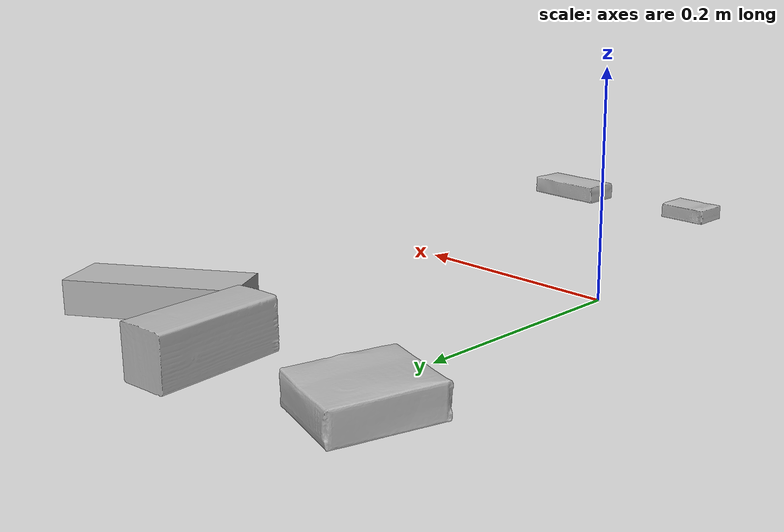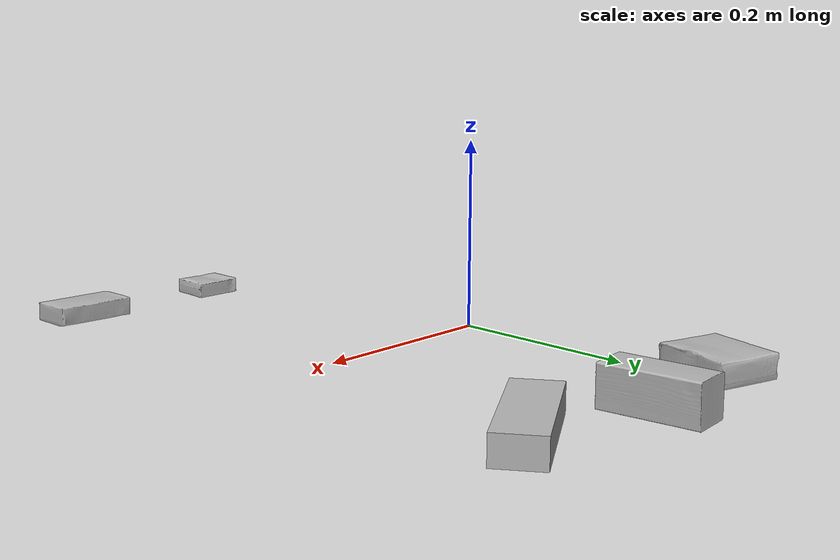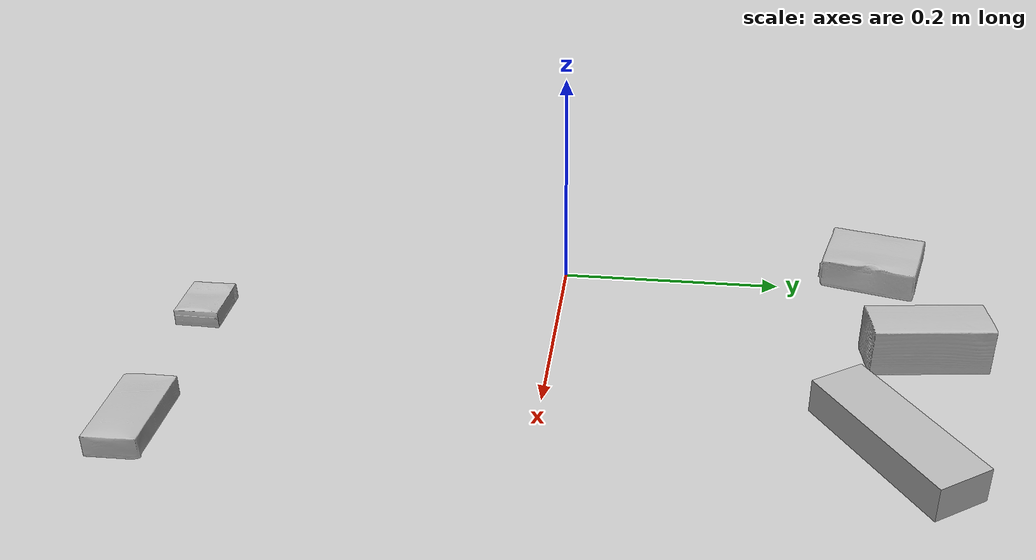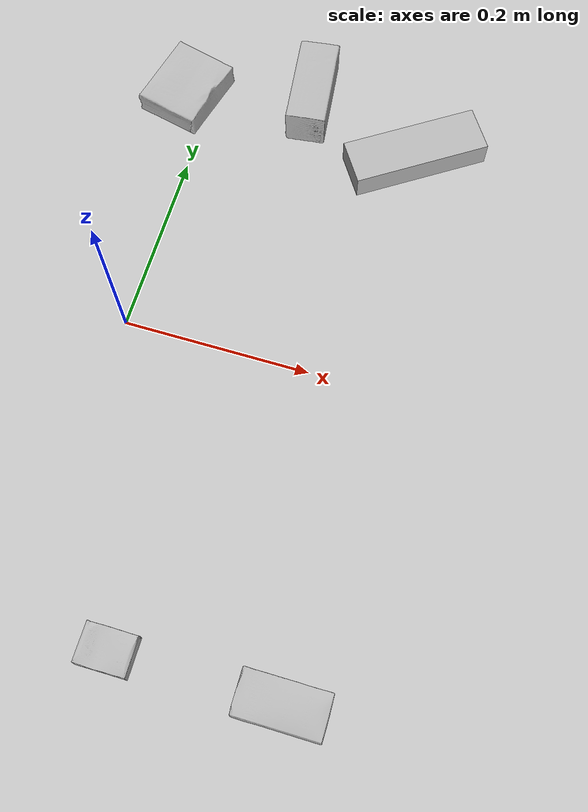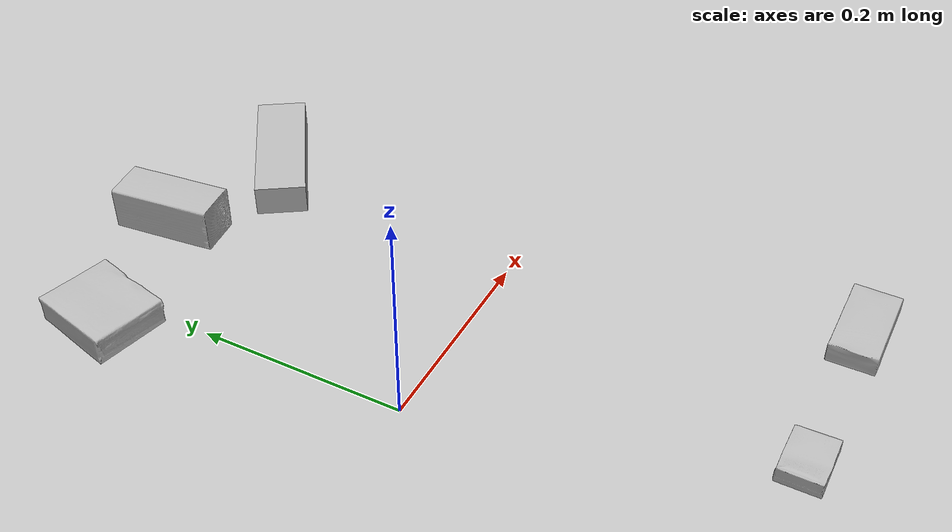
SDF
<?xml version="1.0" ?>
<sdf version="1.4">
  <world name="default">
    <light name="light1" type="point">
      <pose>0 0 1 0 0 0</pose>
      <diffuse>3 3 3 1</diffuse>
      <specular>3 3 3 1</specular>
    </light>
    <light name="light2" type="point">
      <pose>0 0.5 2 0 0 0</pose>
      <diffuse>1 1 1 1</diffuse>
      <specular>1 1 1 1</specular>
    </light>
    <light name="light3" type="point">
      <pose>0 0.5 2 0 0 0</pose>
      <diffuse>3 3 3 1</diffuse>
      <specular>3 3 3 1</specular>
    </light>
    <scene>
      <ambient>0.7 0.7 0.7</ambient>
    </scene>
    <model name="box1">
      <link name="link_box1">
        <collision name="default">
          <geometry>
            <mesh>
              <uri>model://sugar_box/collision_meshes/collision.obj</uri>
              <scale>0.5 0.5 0.5</scale>
            </mesh>
          </geometry>
          <surface>
            <friction>
              <ode>
                <mu>0.5</mu>
                <mu2>0.5</mu2>
              </ode>
            </friction>
          </surface>
        </collision>
        <visual name="default">
          <geometry>
            <mesh>
              <uri>model://sugar_box/visual_meshes/visual.dae</uri>
              <scale>0.5 0.5 0.5</scale>
            </mesh>
          </geometry>
        </visual>
        <inertial>
          <mass>0.05016465485095978</mass>
          <pose>0.0005171863595023751 1.924554817378521e-05 -0.0001818240125430748 -0.00040462615463102695 0.0010506635220671036 0.0026153792546614123</pose>
          <inertia>
            <ixx>1.0449262e-05</ixx>
            <iyy>3.3774166e-05</iyy>
            <izz>4.0431696e-05</izz>
            <ixy>0</ixy>
            <ixz>0</ixz>
            <iyz>0</iyz>
          </inertia>
        </inertial>
      </link>
      <pose>0.26952284574508667 -0.3201334774494171 0.011399304494261742 0.0007748835510885761 -0.0234331634558782 0.00023442556297410225</pose>
    </model>
    <model name="box2">
      <link name="link_box2">
        <collision name="default">
          <geometry>
            <mesh>
              <uri>model://cracker_box/collision_meshes/collision.obj</uri>
              <scale>0.25 0.25 0.25</scale>
            </mesh>
          </geometry>
          <surface>
            <friction>
              <ode>
                <mu>0.5</mu>
                <mu2>0.5</mu2>
              </ode>
            </friction>
          </surface>
        </collision>
        <visual name="default">
          <geometry>
            <mesh>
              <uri>model://cracker_box/visual_meshes/visual.dae</uri>
              <scale>0.25 0.25 0.25</scale>
            </mesh>
          </geometry>
        </visual>
        <inertial>
          <mass>0.05325852707028389</mass>
          <pose>0.0002366033149883151 6.358561950037256e-05 -0.0004257383698131889 -0.000316207624135088 -0.011106486806293444 0.0025467950014945295</pose>
          <inertia>
            <ixx>8.46662e-06</ixx>
            <iyy>1.3980052e-05</iyy>
            <izz>1.995082e-05</izz>
            <ixy>0</ixy>
            <ixz>0</ixz>
            <iyz>0</iyz>
          </inertia>
        </inertial>
      </link>
      <pose>0.09993372112512589 -0.3198489248752594 0.009120452217757702 -0.011788156759353824 -0.007367123240074216 5.318516553397124e-05</pose>
    </model>
    <model name="box3">
      <link name="link_box3">
        <collision name="default">
          <geometry>
            <mesh>
              <uri>model://wood_block/collision_meshes/collision.obj</uri>
              <scale>0.5 0.5 0.5</scale>
            </mesh>
          </geometry>
          <surface>
            <friction>
              <ode>
                <mu>0.5</mu>
                <mu2>0.5</mu2>
              </ode>
            </friction>
          </surface>
        </collision>
        <visual name="default">
          <geometry>
            <mesh>
              <uri>model://wood_block/visual_meshes/visual.dae</uri>
              <scale>0.5 0.5 0.5</scale>
            </mesh>
          </geometry>
        </visual>
        <inertial>
          <mass>0.24977724254131317</mass>
          <pose>-2.9066577553749084e-06 -0.00028540476341731846 0.00013204291462898254 -0.05220975529066727 -0.005192695547513155 -0.006861377927637377</pose>
          <inertia>
            <ixx>8.355995e-05</ixx>
            <iyy>0.00026396586</iyy>
            <izz>0.00026297852</izz>
            <ixy>0</ixy>
            <ixz>0</ixz>
            <iyz>0</iyz>
          </inertia>
        </inertial>
      </link>
      <pose>0.1105639711022377 0.32000285387039185 0.0226292684674263 -0.005208445071495354 0.005718730519562275 -1.4522883272888636</pose>
    </model>
    <model name="box4">
      <link name="link_box4">
        <collision name="default">
          <geometry>
            <mesh>
              <uri>model://gelatin_box/collision_meshes/collision.obj</uri>
              <scale>1.0 1.0 1.0</scale>
            </mesh>
          </geometry>
          <surface>
            <friction>
              <ode>
                <mu>0.5</mu>
                <mu2>0.5</mu2>
              </ode>
            </friction>
          </surface>
        </collision>
        <visual name="default">
          <geometry>
            <mesh>
              <uri>model://gelatin_box/visual_meshes/visual.dae</uri>
              <scale>1.0 1.0 1.0</scale>
            </mesh>
          </geometry>
        </visual>
        <inertial>
          <mass>0.142814502120018</mass>
          <pose>0.0004319618456065655 0.00011156871187267825 -0.0003640321083366871 -0.0010503719804291966 -0.004755819155973465 0.01644055947187314</pose>
          <inertia>
            <ixx>0.000100815385</ixx>
            <iyy>7.20119e-05</iyy>
            <izz>0.00015346348</izz>
            <ixy>0</ixy>
            <ixz>0</ixz>
            <iyz>0</iyz>
          </inertia>
        </inertial>
      </link>
      <pose>-0.030091293156147003 0.289943128824234 0.01516831386834383 0.005597485069827 -0.0073045747149308 -0.258188151813435</pose>
    </model>
    <model name="box5">
      <link name="link_box5">
        <collision name="default">
          <geometry>
            <mesh>
              <uri>model://jenga/collision_meshes/collision.obj</uri>
              <scale>1.0 1.0 1.0</scale>
            </mesh>
          </geometry>
          <surface>
            <friction>
              <ode>
                <mu>0.5</mu>
                <mu2>0.5</mu2>
              </ode>
            </friction>
          </surface>
        </collision>
        <visual name="default">
          <geometry>
            <mesh>
              <uri>model://jenga/visual_meshes/visual.dae</uri>
              <scale>1.0 1.0 1.0</scale>
            </mesh>
          </geometry>
        </visual>
        <inertial>
          <mass>0.11303283274173737</mass>
          <pose>-2.502855807051674e-07 -0.00010250010382151231 -4.0923401684267446e-05 0.0 -7.342155186052628e-07 0.0</pose>
          <inertia>
            <ixx>3.127893e-05</ixx>
            <iyy>0.00021194515</iyy>
            <izz>0.00022626946</izz>
            <ixy>0</ixy>
            <ixz>0</ixz>
            <iyz>0</iyz>
          </inertia>
        </inertial>
      </link>
      <pose>0.23994380235671997 0.2800856828689575 0.014999998733401299 6.6071903809472465e-09 -8.200995785047239e-10 0.5851311684269422</pose>
    </model>
  </world>
</sdf>
